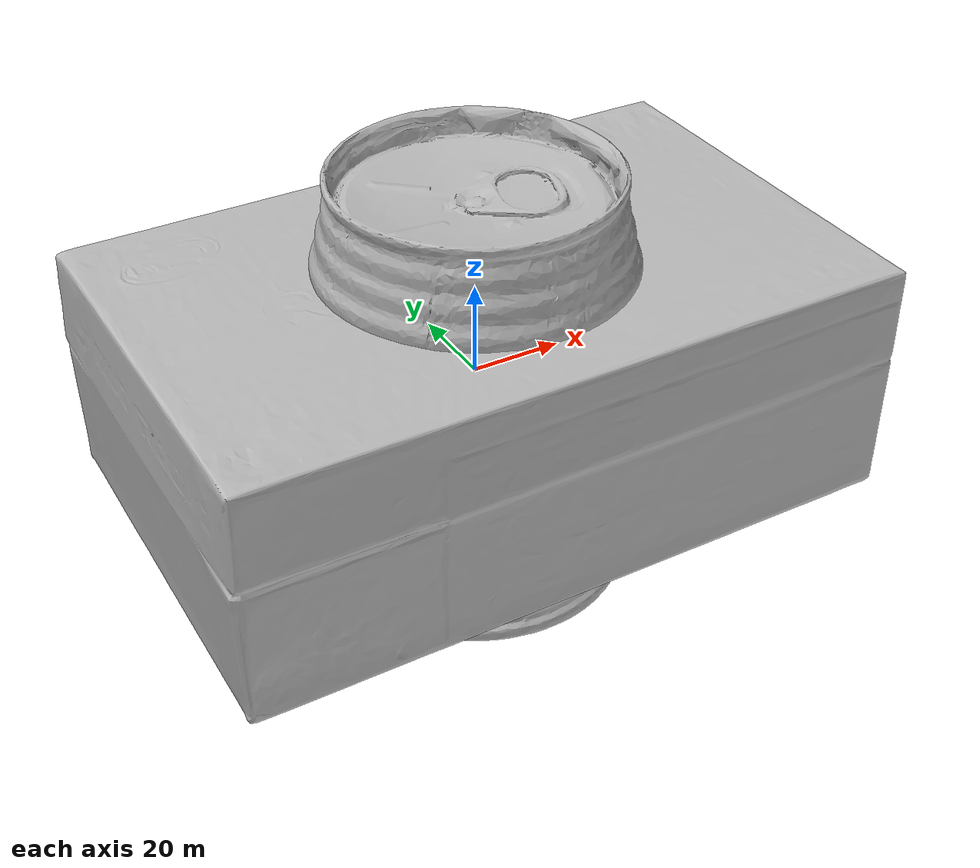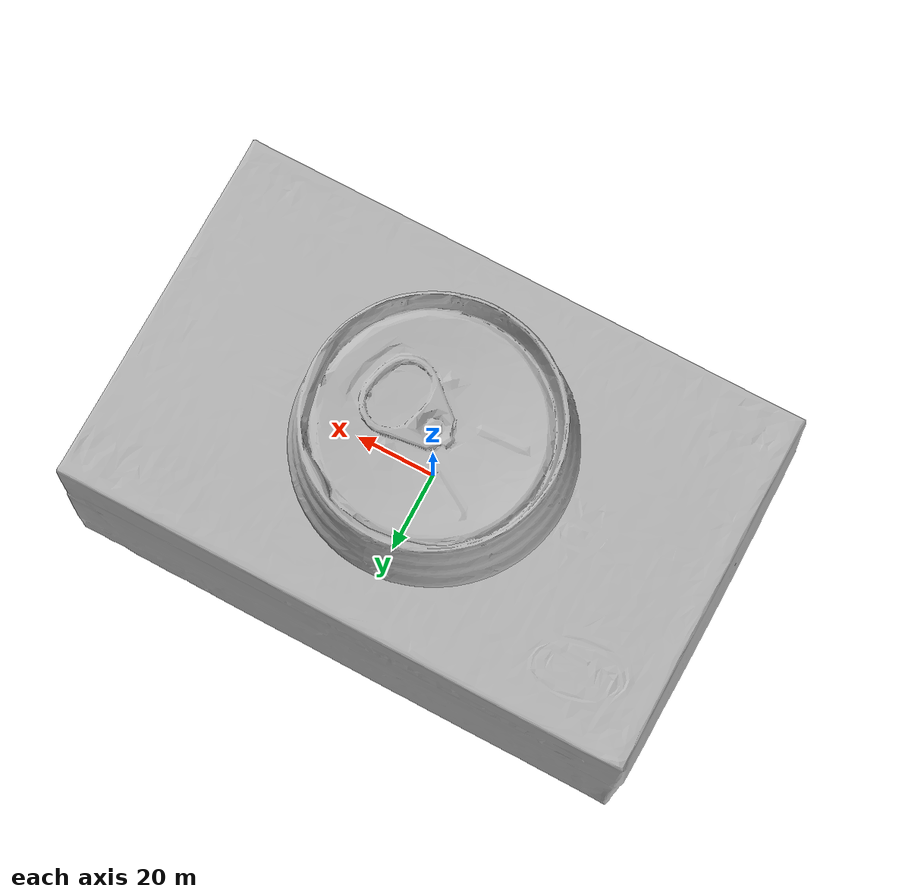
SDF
<?xml version="1.0" ?>
<sdf version="1.4">
  <world name="default">
    <light name="light1" type="point">
      <pose>0 0 1 0 0 0</pose>
      <diffuse>3 3 3 1</diffuse>
      <specular>3 3 3 1</specular>
    </light>
    <light name="light2" type="point">
      <pose>0 0.5 2 0 0 0</pose>
      <diffuse>1 1 1 1</diffuse>
      <specular>1 1 1 1</specular>
    </light>
    <light name="light3" type="point">
      <pose>0 0.5 2 0 0 0</pose>
      <diffuse>3 3 3 1</diffuse>
      <specular>3 3 3 1</specular>
    </light>
    <scene>
      <ambient>0.7 0.7 0.7</ambient>
    </scene>
    <model name="box1">
      <link name="link_box1">
        <collision name="default">
          <geometry>
            <mesh>
              <uri>model://realsense_box/collision_meshes/collision.obj</uri>
              <scale>1.0 1.0 1.0</scale>
            </mesh>
          </geometry>
          <surface>
            <friction>
              <ode>
                <mu>0.5</mu>
                <mu2>0.5</mu2>
              </ode>
            </friction>
            <contact>
              <ode>
                <max_vel>0</max_vel>
                <min_depth>0.0001</min_depth>
                <kp>1e8</kp>
              </ode>
            </contact>
          </surface>
        </collision>
        <visual name="default">
          <geometry>
            <mesh>
              <uri>model://realsense_box/visual_meshes/visual.dae</uri>
              <scale>1.0 1.0 1.0</scale>
            </mesh>
          </geometry>
        </visual>
        <inertial>
          <mass>0.5864310264587402</mass>
          <pose>4.0744838770478964e-05 8.587492629885674e-05 -2.4153792764991522e-05 -0.00012602841398420584 -0.00635893997803049 0.005012323893530406</pose>
          <inertia>
            <ixx>0.00055784633</ixx>
            <iyy>0.0011643406</iyy>
            <izz>0.0014403972</izz>
            <ixy>0</ixy>
            <ixz>0</ixz>
            <iyz>0</iyz>
          </inertia>
        </inertial>
      </link>
      <pose>0.22707529366016388 0.00457178708165884 0.027316007763147354 -5.210878352663903e-08 -4.338929137929623e-08 -0.014728769728171965</pose>
    </model>
    <model name="box2">
      <link name="link_box2">
        <collision name="default">
          <geometry>
            <mesh>
              <uri>model://wooden_puzzle1/collision_meshes/collision.obj</uri>
              <scale>1.0 1.0 1.0</scale>
            </mesh>
          </geometry>
          <surface>
            <friction>
              <ode>
                <mu>0.5</mu>
                <mu2>0.5</mu2>
              </ode>
            </friction>
            <contact>
              <ode>
                <max_vel>0</max_vel>
                <min_depth>0.0001</min_depth>
                <kp>1e8</kp>
              </ode>
            </contact>
          </surface>
        </collision>
        <visual name="default">
          <geometry>
            <mesh>
              <uri>model://wooden_puzzle1/visual_meshes/visual.dae</uri>
              <scale>1.0 1.0 1.0</scale>
            </mesh>
          </geometry>
        </visual>
        <inertial>
          <mass>0.029293930158019066</mass>
          <pose>-0.00017350679263472557 7.972260209498927e-05 -9.191554272547364e-05 -0.07784356807478612 -0.26361316070226715 -0.552870069934309</pose>
          <inertia>
            <ixx>5.5269634e-06</ixx>
            <iyy>5.4205675e-06</iyy>
            <izz>5.4852344e-06</izz>
            <ixy>0</ixy>
            <ixz>0</ixz>
            <iyz>0</iyz>
          </inertia>
        </inertial>
      </link>
      <pose>-0.00994972512125969 0.12343557178974152 0.016802016645669937 0.010511471444833085 -0.009453107952487782 1.0197608128964042</pose>
    </model>
    <model name="box3">
      <link name="link_box3">
        <collision name="default">
          <geometry>
            <mesh>
              <uri>model://wooden_puzzle2/collision_meshes/collision.obj</uri>
              <scale>1.0 1.0 1.0</scale>
            </mesh>
          </geometry>
          <surface>
            <friction>
              <ode>
                <mu>0.5</mu>
                <mu2>0.5</mu2>
              </ode>
            </friction>
            <contact>
              <ode>
                <max_vel>0</max_vel>
                <min_depth>0.0001</min_depth>
                <kp>1e8</kp>
              </ode>
            </contact>
          </surface>
        </collision>
        <visual name="default">
          <geometry>
            <mesh>
              <uri>model://wooden_puzzle2/visual_meshes/visual.dae</uri>
              <scale>1.0 1.0 1.0</scale>
            </mesh>
          </geometry>
        </visual>
        <inertial>
          <mass>0.046210821717977524</mass>
          <pose>2.7402538762544282e-05 4.9976635636994615e-05 6.587122334167361e-05 -0.19202726218652877 0.6112834530151037 -0.6338736448019666</pose>
          <inertia>
            <ixx>8.590097e-06</ixx>
            <iyy>8.826809e-06</iyy>
            <izz>8.7012395e-06</izz>
            <ixy>0</ixy>
            <ixz>0</ixz>
            <iyz>0</iyz>
          </inertia>
        </inertial>
      </link>
      <pose>0.16432933509349823 0.07721894979476929 0.016917729750275612 0.020848394295729787 0.0007213650923912766 -0.2883893436828132</pose>
    </model>
    <model name="can1">
      <link name="link_can1">
        <collision name="default">
          <geometry>
            <mesh>
              <uri>model://pepsi/collision_meshes/collision.obj</uri>
              <scale>1.0 1.0 1.0</scale>
            </mesh>
          </geometry>
          <surface>
            <friction>
              <ode>
                <mu>0.5</mu>
                <mu2>0.5</mu2>
              </ode>
            </friction>
            <contact>
              <ode>
                <max_vel>0</max_vel>
                <min_depth>0.0001</min_depth>
                <kp>1e8</kp>
              </ode>
            </contact>
          </surface>
        </collision>
        <visual name="default">
          <geometry>
            <mesh>
              <uri>model://pepsi/visual_meshes/visual.dae</uri>
              <scale>1.0 1.0 1.0</scale>
            </mesh>
          </geometry>
        </visual>
        <inertial>
          <mass>0.38708412647247314</mass>
          <pose>-7.5590331107378e-05 2.9931279641459696e-05 -0.0003384356386959553 -0.0010677624110939459 -0.0021735778616849013 0.5673701652335379</pose>
          <inertia>
            <ixx>0.00077114574</ixx>
            <iyy>0.0007705839</iyy>
            <izz>0.00016412749</izz>
            <ixy>0</ixy>
            <ixz>0</ixz>
            <iyz>0</iyz>
          </inertia>
        </inertial>
      </link>
      <pose>0.06712484359741211 -0.12564049661159515 0.07449628412723541 -1.834308263676824e-05 1.8853185105769914e-06 2.4468947361942193</pose>
    </model>
    <model name="can2">
      <link name="link_can2">
        <collision name="default">
          <geometry>
            <mesh>
              <uri>model://redbull/collision_meshes/collision.obj</uri>
              <scale>1.0 1.0 1.0</scale>
            </mesh>
          </geometry>
          <surface>
            <friction>
              <ode>
                <mu>0.5</mu>
                <mu2>0.5</mu2>
              </ode>
            </friction>
            <contact>
              <ode>
                <max_vel>0</max_vel>
                <min_depth>0.0001</min_depth>
                <kp>1e8</kp>
              </ode>
            </contact>
          </surface>
        </collision>
        <visual name="default">
          <geometry>
            <mesh>
              <uri>model://redbull/visual_meshes/visual.dae</uri>
              <scale>1.0 1.0 1.0</scale>
            </mesh>
          </geometry>
        </visual>
        <inertial>
          <mass>0.22841571271419525</mass>
          <pose>-2.2126563635538332e-05 -0.00012659550702665 -0.0006860988214612007 0.001137008533125708 -0.010800935482360328 0.5858832407094048</pose>
          <inertia>
            <ixx>0.00021475992</ixx>
            <iyy>0.00021494119</iyy>
            <izz>0.00012744407</izz>
            <ixy>0</ixy>
            <ixz>0</ixz>
            <iyz>0</iyz>
          </inertia>
        </inertial>
      </link>
      <pose>-0.05716314911842346 -0.19015084207057953 0.04638566076755524 -0.010489067499399983 0.007261206589512847 1.7047770707832413</pose>
    </model>
    <physics type="ode">
      <max_contacts>50</max_contacts>
      <ode>
        <solver>
          <type>quick</type>
          <iters>75</iters>
        </solver>
        <constraints>
          <contact_max_correcting_vel>0</contact_max_correcting_vel>
          <contact_surface_layer>0</contact_surface_layer>
        </constraints>
      </ode>
    </physics>
  </world>
</sdf>
